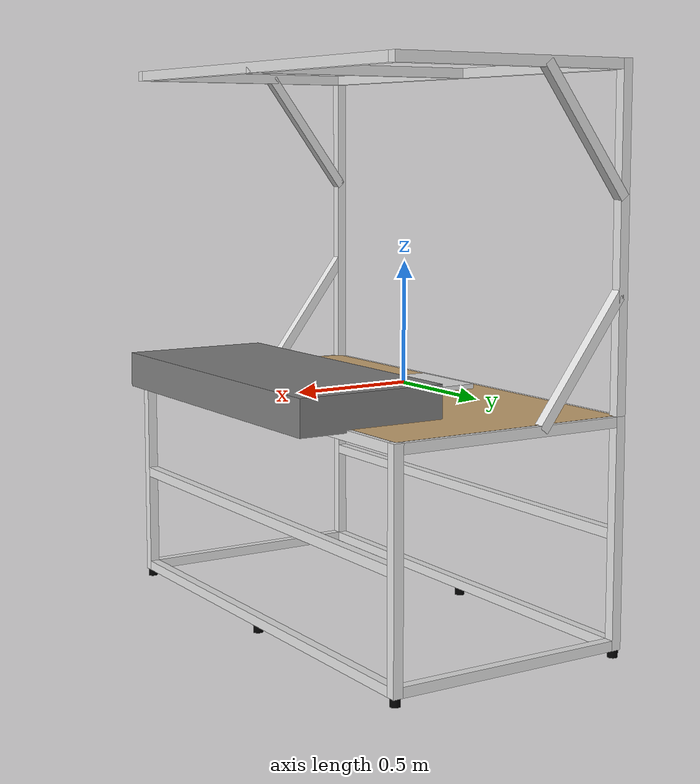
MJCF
<mujoco model="PandaFrame">
    <worldbody>
        <body name="table_plane" pos="0.2 0 -0.02">
            <geom type="box" size="0.49 0.98 0.001" rgba="0.8 0.655 0.45 1" solimp="0.999 0.999 0.001" solref="0.002 1" contype="7" conaffinity="7"/>

            <body name="panda_ground" pos="-0.24 0 0.01">
                <geom type="box" size="0.18 0.18 0.01" rgba=".9 .9 .9 1"/>
            </body>

            <body name="front_upper" pos="0.49 0 -0.02">
                <geom type="box" size="0.02 0.96 0.02" rgba=".9 .9 .9 1"/>
            </body>
            <body name="front_mid" pos="0.49 0 -0.445">
                <geom type="box" size="0.02 0.96 0.02" rgba=".9 .9 .9 1"/>
            </body>
            <body name="front_lower" pos="0.49 0 -0.87">
                <geom type="box" size="0.02 0.96 0.02" rgba=".9 .9 .9 1"/>
            </body>

            <body name="back_upper" pos="-0.49 0 -0.02">
                <geom type="box" size="0.02 0.96 0.02" rgba=".9 .9 .9 1"/>
            </body>
            <body name="back_mid" pos="-0.49 0 -0.445">
                <geom type="box" size="0.02 0.96 0.02" rgba=".9 .9 .9 1"/>
            </body>
            <body name="back_lower" pos="-0.49 0 -0.87">
                <geom type="box" size="0.02 0.96 0.02" rgba=".9 .9 .9 1"/>
            </body>

            <body name="vert_front_left" pos="0.49 0.98 -0.445">
                <geom type="box" size="0.02 0.02 0.445" rgba=".9 .9 .9 1"/>
            </body>
            <body name="vert_front_right" pos="0.49 -0.98 -0.445">
                <geom type="box" size="0.02 0.02 0.445" rgba=".9 .9 .9 1"/>
            </body>
            <body name="vert_back_left" pos="-0.49 0.98 -0.445">
                <geom type="box" size="0.02 0.02 0.445" rgba=".9 .9 .9 1"/>
            </body>
            <body name="vert_back_right" pos="-0.49 -0.98 -0.445">
                <geom type="box" size="0.02 0.02 0.445" rgba=".9 .9 .9 1"/>
            </body>

            <body name="side_upper_right" pos="0 -0.98 -0.02">
                <geom type="box" size="0.47 0.02 0.02" rgba=".9 .9 .9 1"/>
            </body>
            <body name="side_lower_right" pos="0 -0.98 -0.87">
                <geom type="box" size="0.47 0.02 0.02" rgba=".9 .9 .9 1"/>
            </body>

            <body name="side_upper_left" pos="0 0.98 -0.02">
                <geom type="box" size="0.47 0.02 0.02" rgba=".9 .9 .9 1"/>
            </body>
            <body name="side_lower_left" pos="0 0.98 -0.87">
                <geom type="box" size="0.47 0.02 0.02" rgba=".9 .9 .9 1"/>
            </body>

            <body name="foot_front_left" pos="0.49 0.98 -0.9">
                <geom type="cylinder" size="0.02 0.02 0.04" rgba="0 0 0 1"/>
            </body>
            <body name="foot_front_mid" pos="0.49 0 -0.9">
                <geom type="cylinder" size="0.02 0.02 0.04" rgba="0 0 0 1"/>
            </body>
            <body name="foot_front_right" pos="0.49 -0.98 -0.9">
                <geom type="cylinder" size="0.02 0.02 0.04" rgba="0 0 0 1"/>
            </body>

            <body name="foot_back_left" pos="-0.49 0.98 -0.9">
                <geom type="cylinder" size="0.02 0.02 0.04" rgba="0 0 0 1"/>
            </body>
            <body name="foot_back_mid" pos="-0.49 0 -0.9">
                <geom type="cylinder" size="0.02 0.02 0.04" rgba="0 0 0 1"/>
            </body>
            <body name="foot_back_right" pos="-0.49 -0.98 -0.9">
                <geom type="cylinder" size="0.02 0.02 0.04" rgba="0 0 0 1"/>
            </body>

            <body name="top_back_left" pos="-0.49 0.98 0.65">
                <geom type="box" size="0.02 0.02 0.65" rgba=".9 .9 .9 1"/>
            </body>
            <body name="top_back_right" pos="-0.49 -0.98 0.65">
                <geom type="box" size="0.02 0.02 0.65" rgba=".9 .9 .9 1"/>
            </body>
            <body name="top_front" pos="0.49 0 1.28">
                <geom type="box" size="0.02 0.96 0.02" rgba=".9 .9 .9 1"/>
            </body>
            <body name="top_back" pos="-0.49 0 1.28">
                <geom type="box" size="0.02 0.96 0.02" rgba=".9 .9 .9 1"/>
            </body>
            <body name="top_side_right" pos="0 -0.98 1.28">
                <geom type="box" size="0.51 0.02 0.02" rgba=".9 .9 .9 1"/>
            </body>
            <body name="top_side_mid" pos="0 0 1.28">
                <geom type="box" size="0.51 0.02 0.02" rgba=".9 .9 .9 1"/>
            </body>
            <body name="top_side_left" pos="0 0.98 1.28">
                <geom type="box" size="0.51 0.02 0.02" rgba=".9 .9 .9 1"/>
            </body>

            <body name="rot_lower_right" pos="-0.31 0.98 0.22" quat="0.2 0 0.1 0">
                <geom type="box" size="0.3 0.02 0.02" rgba=".9 .9 .9 1"/>
            </body>
            <body name="rot_lower_left" pos="-0.31 -0.98 0.22" quat="0.2 0 0.1 0">
                <geom type="box" size="0.3 0.02 0.02" rgba=".9 .9 .9 1"/>
            </body>
            <body name="rot_upper_right" pos="-0.31 0.98 1.04" quat="0.1 0 0.2 0">
                <geom type="box" size="0.3 0.02 0.02" rgba=".9 .9 .9 1"/>
            </body>
            <body name="rot_upper_left" pos="-0.31 -0.98 1.04" quat="0.1 0 0.2 0">
                <geom type="box" size="0.3 0.02 0.02" rgba=".9 .9 .9 1"/>
            </body>

            <body name="support_body" pos="0 0 -0.4">
                <geom type="box" size="0.49 0.98 0.4" rgba="0 0 0 0" solimp="0.999  0.999 0.001" solref="0.002 1"/>
            </body>

            <!-- push need  -->
            <body name="platform_box" pos="0.0 0.0 0.0" quat="1 0 0 0">
                <geom name="platform_box" pos="0.4 0 0.06" size="0.3 0.7 0.07"  rgba="0.5 0.5 0.5 1.0" type="box" mass="0.01" friction="1 0.001 0.0001" priority="1"/>
            </body>
            <!-- push need -->

        </body>
    </worldbody>
</mujoco>
